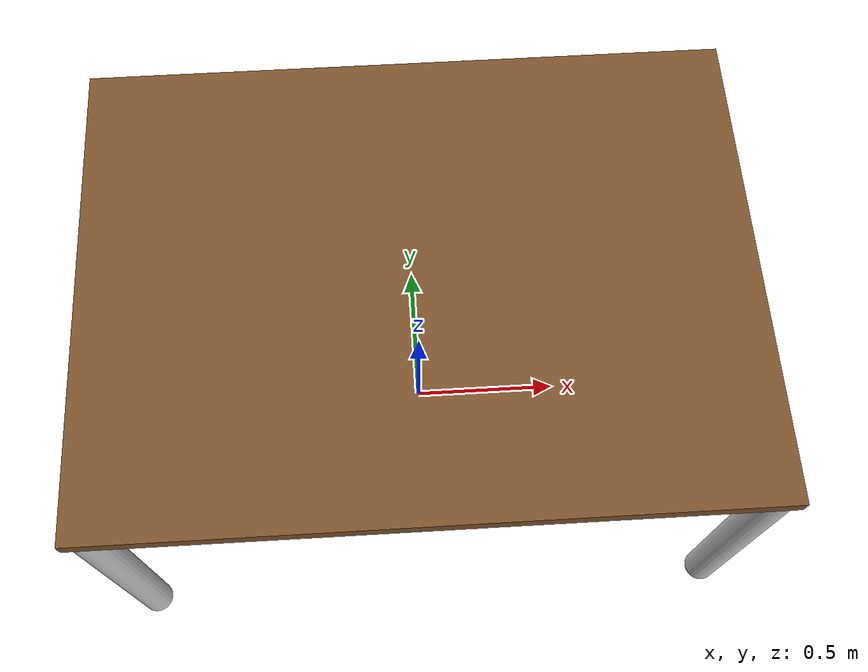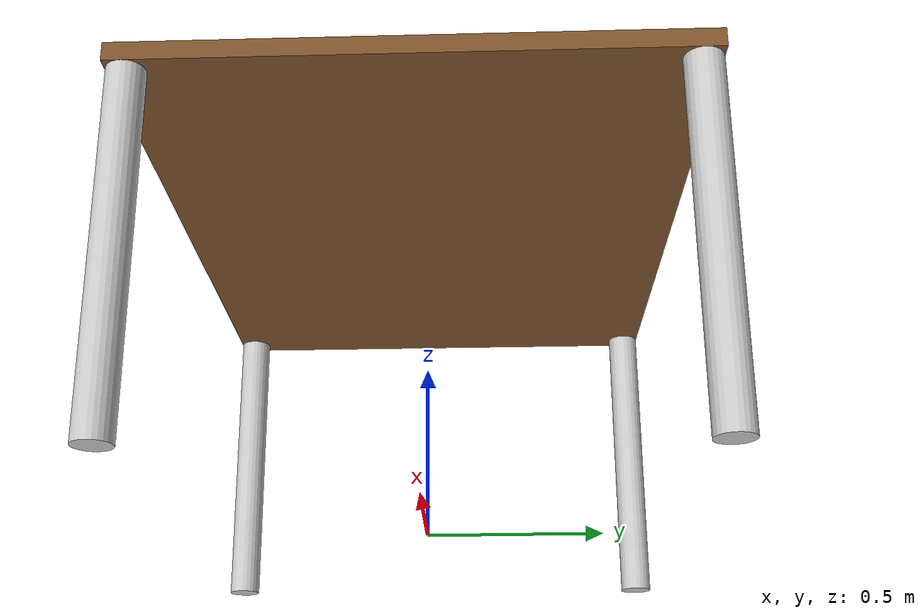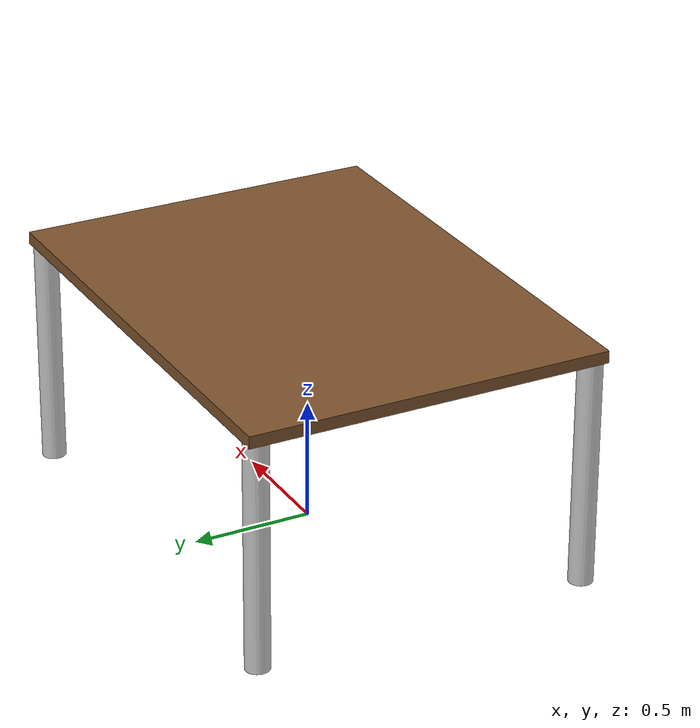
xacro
<?xml version="1.0" encoding="UTF-8"?>
<robot xmlns:xacro="http://wiki.ros.org/xacro" name="table">

  <xacro:include filename="materials.xacro" />
  <xacro:include filename="table_macro.xacro" />

  <!-- create link fixed to the "world" -->
  <link name="world" />

  <!-- create the table -->
  <xacro:table prefix="table_" parent="world">
    <origin xyz="0 0 1.0" rpy="0 0 0" />
  </xacro:table>

</robot>

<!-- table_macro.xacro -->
<robot xmlns:xacro="http://www.ros.org/wiki/xacro">

  <xacro:macro name="table" params="prefix parent *origin">

    <!-- Constants for table dimensions -->
    <xacro:property name="table_length" value="2" />
    <xacro:property name="table_width" value="1.5" />
    <xacro:property name="table_height" value="1" />
    <xacro:property name="table_thickness" value="0.05" />
    <xacro:property name="leg_length" value="${table_height - table_thickness}" />
    <xacro:property name="leg_radius" value="0.05" />

    <!-- Table Top -->
    <link name="${prefix}top">
      <visual>
        <origin xyz="0 0 ${-table_thickness/2}" rpy="0 0 0" />
        <geometry>
          <box size="${table_length} ${table_width} ${table_thickness}" />
        </geometry>
        <material name="brown" />
      </visual>
    </link>

    <joint name="${prefix}top_joint" type="fixed">
      <xacro:insert_block name="origin" />
      <parent link="${parent}" />
      <child link="${prefix}top" />
    </joint>

    <!-- Leg 1 -->
    <link name="${prefix}leg1">
      <visual>
        <origin xyz="0 0 ${-leg_length/2}" rpy="0 0 0" />
        <geometry>
          <cylinder radius="${leg_radius}" length="${leg_length}" />
        </geometry>
        <material name="light_grey" />
      </visual>
    </link>

    <joint name="${prefix}leg1_joint" type="fixed">
      <origin
        xyz="${table_length/2 - leg_radius}
             ${table_width/2 - leg_radius}
             ${-table_thickness}"
        rpy="0 0 0" />
      <parent link="${prefix}top" />
      <child link="${prefix}leg1" />
    </joint>

    <!-- Leg 2 -->
    <link name="${prefix}leg2">
      <visual>
        <origin xyz="0 0 ${-leg_length/2}" rpy="0 0 0" />
        <geometry>
          <cylinder radius="${leg_radius}" length="${leg_length}" />
        </geometry>
        <material name="light_grey" />
      </visual>
    </link>

    <joint name="${prefix}leg2_joint" type="fixed">
      <origin
        xyz="${table_length/2 - leg_radius}
             ${-table_width/2 + leg_radius}
             ${-table_thickness}"
        rpy="0 0 0" />
      <parent link="${prefix}top" />
      <child link="${prefix}leg2" />
    </joint>

    <!-- Leg 3 -->
    <link name="${prefix}leg3">
      <visual>
        <origin xyz="0 0 ${-leg_length/2}" rpy="0 0 0" />
        <geometry>
          <cylinder radius="${leg_radius}" length="${leg_length}" />
        </geometry>
        <material name="light_grey" />
      </visual>
    </link>

    <joint name="${prefix}leg3_joint" type="fixed">
      <origin
        xyz="${-table_length/2 + leg_radius}
             ${table_width/2 - leg_radius}
             ${-table_thickness}"
        rpy="0 0 0" />
      <parent link="${prefix}top" />
      <child link="${prefix}leg3" />
    </joint>

    <!-- Leg 4 -->
    <link name="${prefix}leg4">
      <visual>
        <origin xyz="0 0 ${-leg_length/2}" rpy="0 0 0" />
        <geometry>
          <cylinder radius="${leg_radius}" length="${leg_length}" />
        </geometry>
        <material name="light_grey" />
      </visual>
    </link>

    <joint name="${prefix}leg4_joint" type="fixed">
      <origin
        xyz="${-table_length/2 + leg_radius}
             ${-table_width/2 + leg_radius}
             ${-table_thickness}"
        rpy="0 0 0" />
      <parent link="${prefix}top" />
      <child link="${prefix}leg4" />
    </joint>

  </xacro:macro>

</robot>
